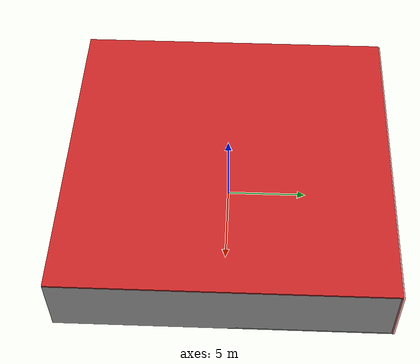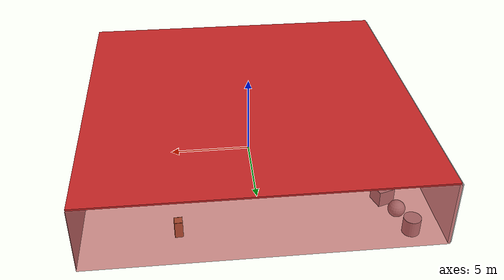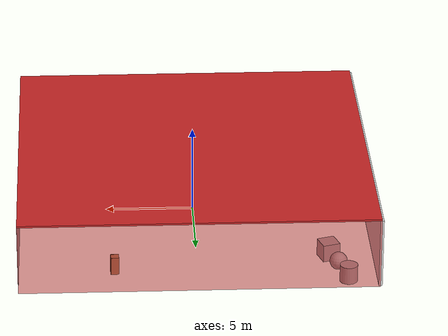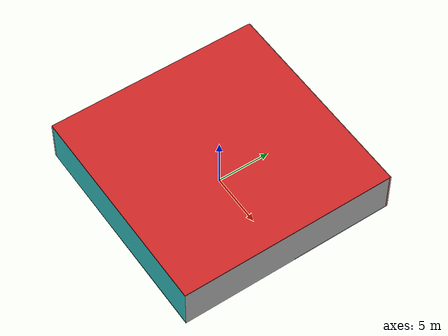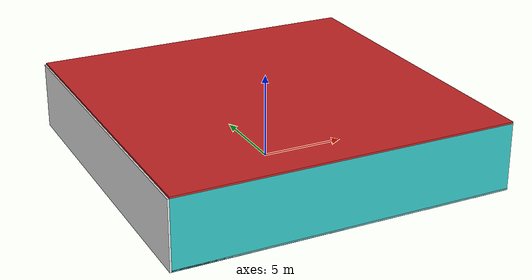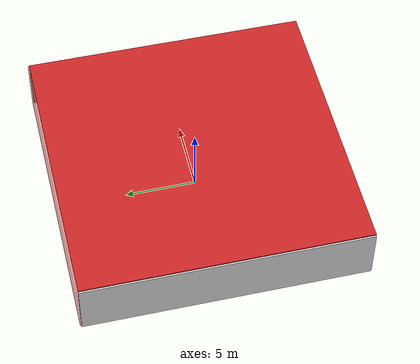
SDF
<sdf version="1.4">
 <world name="default">
  <physics type="ode">
   <max_step_size>0.001</max_step_size>
   <real_time_factor>1</real_time_factor>
   <real_time_update_rate>1000</real_time_update_rate>
   <gravity>0 0 -9.8</gravity>
  </physics>
  <scene><ambient>0.4 0.4 0.4 1</ambient><background>0.7 0.7 0.7 1</background><shadows>1</shadows></scene>
  <model name="Surrounding">
   <static>1</static>
   <link name="Ceiling">
    <collision name="Ceiling_Collision"><geometry><box><size>20 20 0.1</size></box></geometry></collision>
    <visual name="Ceiling_Visual">
     <geometry><box><size>20 20 0.1</size></box></geometry>
     <material>
      <script><uri>file://media/materials/scripts/gazebo.material</uri><name>Gazebo/RedBright</name></script>
     </material>
    </visual>
    <pose>0 0 4.05 0 0 0</pose>
   </link>
   <link name="Wall_South">
    <collision name="Wall_South_Collision">
     <geometry><box><size>20 0 4</size></box></geometry>
     <pose>0 0 2 0 -0 0</pose>
    </collision>
    <visual name="Wall_South_Visual">
     <pose>0 0 2 0 -0 0</pose>
     <geometry><box><size>20 0 4</size></box></geometry>
     <material>
      <script><uri>file://media/materials/scripts/gazebo.material</uri><name>Gazebo/TurquoiseGlow</name></script>
     </material>
    </visual>
    <velocity_decay><linear>0</linear><angular>0</angular></velocity_decay>
    <pose>0 -10 0 0 -0 0</pose>
   </link>
   <link name="Wall_East">
    <collision name="Wall_21_Collision">
     <geometry><box><size>20 0 4</size></box></geometry>
     <pose>0 0 2 0 -0 0</pose>
    </collision>
    <visual name="Wall_21_Visual">
     <pose>0 0 2 0 -0 0</pose>
     <geometry><box><size>20 0 4</size></box></geometry>
     <material>
      <script><uri>file://media/materials/scripts/gazebo.material</uri><name>Gazebo/LightOn</name></script>
     </material>
    </visual>
    <velocity_decay><linear>0</linear><angular>0</angular></velocity_decay>
    <pose>10 0 0 0 -0 1.5708</pose>
   </link>
   <link name="Wall_North">
    <collision name="Wall_22_Collision">
     <geometry><box><size>20 0.2 4</size></box></geometry>
     <pose>0 0 2 0 -0 0</pose>
    </collision>
    <visual name="Wall_22_Visual">
     <pose>0 0 2 0 -0 0</pose>
     <geometry><box><size>20 0.2 4</size></box></geometry>
     <material>
      <script><uri>file://media/materials/scripts/gazebo.material</uri><name>Gazebo/RedTransparent</name></script>
     </material>
    </visual>
    <velocity_decay><linear>0</linear><angular>0</angular></velocity_decay>
    <pose>0 10 0 0 -0 0</pose>
   </link>
   <link name="Wall_West">
    <collision name="Wall_23_Collision">
     <geometry><box><size>20 0.2 4</size></box></geometry>
     <pose>0 0 2 0 -0 0</pose>
    </collision>
    <visual name="Wall_23_Visual">
     <pose>0 0 2 0 -0 0</pose>
     <geometry><box><size>20 0.2 4</size></box></geometry>
     <material>
      <script><uri>file://media/materials/scripts/gazebo.material</uri><name>Gazebo/White</name></script>
     </material>
    </visual>
    <velocity_decay><linear>0</linear><angular>0</angular></velocity_decay>
    <pose>-10 0 0 0 0 -1.5708</pose>
   </link>
   <link name="Ground_link">
    <collision name="collision">
     <pose>0 0 .05 0 -0 0</pose>
     <geometry><box><size>20 20 0.1</size></box></geometry>
    </collision>
    <visual name="visual">
     <pose>0 0 .05 0 -0 0</pose>
     <geometry><box><size>20 20 0.1</size></box></geometry>
     <material>
      <script><uri>file://media/materials/scripts/gazebo.material</uri><name>Gazebo/GreyTransparent</name></script>
     </material>
    </visual>
   </link>
   <static>1</static>
  </model>
  <spherical_coordinates>
   <surface_model>EARTH_WGS84</surface_model>
   <latitude_deg>0</latitude_deg>
   <longitude_deg>0</longitude_deg>
   <elevation>0</elevation>
   <heading_deg>0</heading_deg>
  </spherical_coordinates>
  <light name="lightball_0" type="diffuse">
   <diffuse>0.8 0.8 0.8 1</diffuse>
   <specular>0.2 0.2 0.2 1</specular>
   <attenuation>
    <range>100</range>
    <constant>0.7</constant>
    <linear>0.01</linear>
    <quadratic>0.001</quadratic>
   </attenuation>
   <direction>-0.5 0.1 -0.9</direction>
   <pose>8.26035138412 9.74175021273 2.90383564667 0 0 0</pose>
  </light>
  <light name="lightball_1" type="diffuse">
   <diffuse>0.8 0.8 0.8 1</diffuse>
   <specular>0.2 0.2 0.2 1</specular>
   <attenuation>
    <range>100</range>
    <constant>0.7</constant>
    <linear>0.01</linear>
    <quadratic>0.001</quadratic>
   </attenuation>
   <direction>-0.5 0.1 -0.9</direction>
   <pose>2.78353662372 5.29825678284 2.78015246126 0 0 0</pose>
  </light>
  <light name="lightball_2" type="diffuse">
   <diffuse>0.8 0.8 0.8 1</diffuse>
   <specular>0.2 0.2 0.2 1</specular>
   <attenuation>
    <range>100</range>
    <constant>0.7</constant>
    <linear>0.01</linear>
    <quadratic>0.001</quadratic>
   </attenuation>
   <direction>-0.5 0.1 -0.9</direction>
   <pose>5.83493278139 1.47682059632 0.636560618354 0 0 0</pose>
  </light>
  <include>
   <uri>model://textured_shapes</uri>
   <pose>-8.22079813027 -4.28930374821 0 0 0 2.67466412454</pose>
  </include>
  <include>
   <uri>model://textured_shapes</uri>
   <pose>-7.93935041539 6.93648575851 0 0 0 0.304319875026</pose>
  </include>
  <include>
   <uri>model://textured_shapes</uri>
   <pose>4.71516014652 -6.8776177064 0 0 0 0.0398276362837</pose>
  </include>
  <include><uri>model://cabinet</uri><pose>4.64070003106 7.82881384743 0 0 0 0.0574084057288</pose></include>
 </world>
</sdf>

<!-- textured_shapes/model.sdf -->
<sdf version="1.6">
  <model name="textured_shapes">
    <pose>0 0 0.5 0 0 0</pose>
    <link name="box">
      <pose>0 -1.5 0 0 0 0</pose>
      <collision name="collision">
        <geometry>
          <box>
            <size>1 1 1</size>
          </box>
        </geometry>
      </collision>
      <visual name="visual">
        <geometry>
          <box>
            <size>1 1 1</size>
          </box>
        </geometry>
        <material>
          <script>
            <uri>model://../model_source/models/textured_shapes/materials/scripts</uri>
            <uri>model://../model_source/models/textured_shapes/materials/textures</uri>
            <name>TexturedShape/Squares</name>
          </script>
        </material>
      </visual>
    </link>
    <link name="sphere">
      <collision name="collision">
        <geometry>
          <sphere>
            <radius>0.5</radius>
          </sphere>
        </geometry>
      </collision>
      <visual name="visual">
        <geometry>
          <sphere>
            <radius>0.5</radius>
          </sphere>
        </geometry>
        <material>
          <script>
            <uri>model://../model_source/models/textured_shapes/materials/scripts</uri>
            <uri>model://../model_source/models/textured_shapes/materials/textures</uri>
            <name>TexturedShape/Squares</name>
          </script>
        </material>
      </visual>
    </link>
    <link name="cylinder">
      <pose>0 1.5 0 0 0 0</pose>
      <collision name="collision">
        <geometry>
          <cylinder>
            <radius>0.5</radius>
            <length>1</length>
          </cylinder>
        </geometry>
      </collision>
      <visual name="visual">
        <geometry>
          <cylinder>
            <radius>0.5</radius>
            <length>1</length>
          </cylinder>
        </geometry>
        <material>
          <script>
            <uri>model://../model_source/models/textured_shapes/materials/scripts</uri>
            <uri>model://../model_source/models/textured_shapes/materials/textures</uri>
            <name>TexturedShape/Squares</name>
          </script>
        </material>
      </visual>
    </link>
  </model>
</sdf>

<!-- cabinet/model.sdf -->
<sdf version="1.5">
  <model name="cabinet">
    <static>true</static>
    <link name="cabinet_bottom_plate">
      <inertial>
        <pose>0 0 -1 0 0 0</pose>
        <inertia>
          <ixx>2.050000</ixx>
          <ixy>0</ixy>
          <ixz>0</ixz>
          <iyy>2.050000</iyy>
          <iyz>0</iyz>
          <izz>2.050000</izz>
        </inertia>
        <mass>25.000000</mass>
      </inertial>
      <collision name="cabinet_bottom_plate_geom">
        <pose>0 0 0.010000 0 0 0</pose>
        <geometry>
          <box>
            <size>0.450000 0.450000 0.020000</size>
          </box>
        </geometry>
      </collision>
      <visual name="cabinet_bottom_plate_geom_visual">
        <pose>0 0 0.010000 0 0 0</pose>
        <geometry>
          <box>
            <size>0.450000 0.450000 0.020000</size>
          </box>
        </geometry>
        <material>
          <script>
            <uri>model://media/materials/scripts/gazebo.material</uri>
            <name>Gazebo/Wood</name>
          </script>
        </material>
      </visual>
      <collision name="cabinet_bottom_plate_geom_cabinet_back_plate">
        <pose>0.235000 0 0.510000 0 0 0</pose>
        <geometry>
          <box>
            <size>0.020000 0.450000 1.020000</size>
          </box>
        </geometry>
      </collision>
      <visual name="cabinet_bottom_plate_geom_cabinet_back_plate_visual">
        <pose>0.235000 0 0.510000 0 0 0</pose>
        <geometry>
          <box>
            <size>0.020000 0.450000 1.020000</size>
          </box>
        </geometry>
        <material>
          <script>
            <uri>model://media/materials/scripts/gazebo.material</uri>
            <name>Gazebo/Wood</name>
          </script>
        </material>
      </visual>
      <collision name="cabinet_bottom_plate_geom_cabinet_left_plate">
        <pose>0 0.235000 0.510000 0 0 0</pose>
        <geometry>
          <box>
            <size>0.450000 0.020000 1.020000</size>
          </box>
        </geometry>
      </collision>
      <visual name="cabinet_bottom_plate_geom_cabinet_left_plate_visual">
        <pose>0 0.235000 0.510000 0 0 0</pose>
        <geometry>
          <box>
            <size>0.450000 0.020000 1.020000</size>
          </box>
        </geometry>
        <material>
          <script>
            <uri>model://media/materials/scripts/gazebo.material</uri>
            <name>Gazebo/Wood</name>
          </script>
        </material>
      </visual>
      <collision name="cabinet_bottom_plate_geom_cabinet_middle_plate">
        <pose>0 0 0.510000 0 0 0</pose>
        <geometry>
          <box>
            <size>0.450000 0.450000 0.020000</size>
          </box>
        </geometry>
      </collision>
      <visual name="cabinet_bottom_plate_geom_cabinet_middle_plate_visual">
        <pose>0 0 0.510000 0 0 0</pose>
        <geometry>
          <box>
            <size>0.450000 0.450000 0.020000</size>
          </box>
        </geometry>
        <material>
          <script>
            <uri>model://media/materials/scripts/gazebo.material</uri>
            <name>Gazebo/Wood</name>
          </script>
        </material>
      </visual>
      <collision name="cabinet_bottom_plate_geom_cabinet_right_plate">
        <pose>0 -0.235000 0.510000 0 0 0</pose>
        <geometry>
          <box>
            <size>0.450000 0.020000 1.020000</size>
          </box>
        </geometry>
      </collision>
      <visual name="cabinet_bottom_plate_geom_cabinet_right_plate_visual">
        <pose>0 -0.235000 0.510000 0 0 0</pose>
        <geometry>
          <box>
            <size>0.450000 0.020000 1.020000</size>
          </box>
        </geometry>
        <material>
          <script>
            <uri>model://media/materials/scripts/gazebo.material</uri>
            <name>Gazebo/Wood</name>
          </script>
        </material>
      </visual>
      <collision name="cabinet_bottom_plate_geom_cabinet_top_plate">
        <pose>0 0 1.010000 0 0 0</pose>
        <geometry>
          <box>
            <size>0.450000 0.450000 0.020000</size>
          </box>
        </geometry>
      </collision>
      <visual name="cabinet_bottom_plate_geom_cabinet_top_plate_visual">
        <pose>0 0 1.010000 0 0 0</pose>
        <geometry>
          <box>
            <size>0.450000 0.450000 0.020000</size>
          </box>
        </geometry>
        <material>
          <script>
            <uri>model://media/materials/scripts/gazebo.material</uri>
            <name>Gazebo/Wood</name>
          </script>
        </material>
      </visual>
    </link>
  </model>
</sdf>
